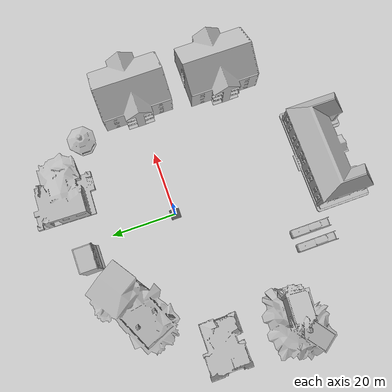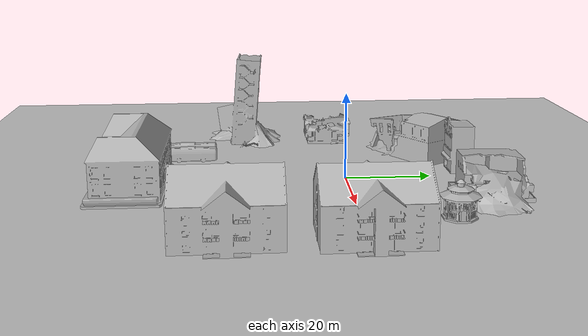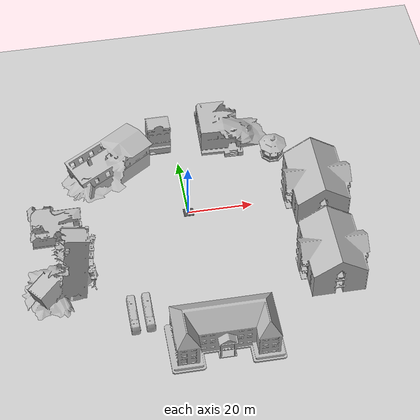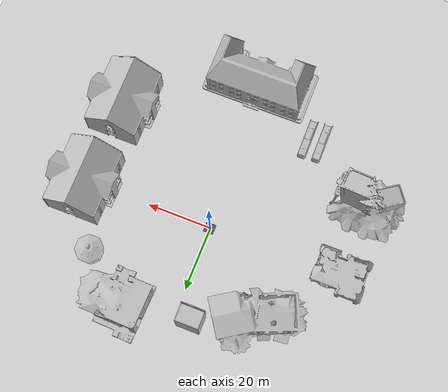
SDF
<sdf version="1.7">
 <world name="default">
  <light name="sun" type="directional">
   <pose>0 0 10 0 -0 0</pose>
   <diffuse>0.8 0.8 0.8 1</diffuse>
   <specular>0.2 0.2 0.2 1</specular>
   <attenuation>
    <range>1000</range>
    <constant>0.9</constant>
    <linear>0.01</linear>
    <quadratic>0.001</quadratic>
   </attenuation>
   <direction>-0.5 0.1 -0.9</direction>
   <spot><inner_angle>0</inner_angle><outer_angle>0</outer_angle><falloff>0</falloff></spot>
  </light>
  <model name="ground_plane">
   <static>1</static>
   <link name="link">
    <collision name="collision">
     <geometry><plane><normal>0 0 1</normal><size>100 100</size></plane></geometry>
     <surface><friction><ode><mu>100</mu><mu2>50</mu2></ode></friction></surface>
    </collision>
    <visual name="visual">
     <cast_shadows>0</cast_shadows>
     <geometry><plane><normal>0 0 1</normal><size>100 100</size></plane></geometry>
     <material>
      <script><uri>file://media/materials/scripts/gazebo.material</uri><name>Gazebo/Grey</name></script>
     </material>
    </visual>
   </link>
  </model>
  <gravity>0 0 -9.8</gravity>
  <magnetic_field>6e-06 2.3e-05 -4.2e-05</magnetic_field>
  <atmosphere type="adiabatic"/>
  <physics type="ode">
   <max_step_size>0.001</max_step_size>
   <real_time_factor>1</real_time_factor>
   <real_time_update_rate>1000</real_time_update_rate>
  </physics>
  <scene><ambient>0.4 0.4 0.4 1</ambient><background>0.7 0.7 0.7 1</background><shadows>1</shadows></scene>
  <spherical_coordinates>
   <surface_model>EARTH_WGS84</surface_model>
   <latitude_deg>0</latitude_deg>
   <longitude_deg>0</longitude_deg>
   <elevation>0</elevation>
   <heading_deg>0</heading_deg>
  </spherical_coordinates>
  <model name="asphalt_plane">
   <static>1</static>
   <link name="link">
    <collision name="collision"><geometry><box><size>3.09866 2.9842 0.1</size></box></geometry></collision>
    <visual name="visual">
     <cast_shadows>0</cast_shadows>
     <geometry><box><size>3.09866 2.9842 0.1</size></box></geometry>
     <material>
      <script>
       <uri>model://asphalt_plane/materials/scripts</uri>
       <uri>model://asphalt_plane/materials/textures</uri>
       <name>vrc/asphalt</name>
      </script>
     </material>
    </visual>
   </link>
   <pose>0.124617 0.064095 0 0 -0 0</pose>
  </model>
  <model name="apartment">
   <static>1</static>
   <link name="link">
    <collision name="collision">
     <geometry><mesh><uri>model://apartment/meshes/apartment.dae</uri></mesh></geometry>
    </collision>
    <visual name="visual">
     <geometry><mesh><uri>model://apartment/meshes/apartment.dae</uri></mesh></geometry>
    </visual>
   </link>
   <pose>40.0406 0.602142 0 0 -0 0</pose>
  </model>
  <model name="apartment_0">
   <static>1</static>
   <link name="link">
    <collision name="collision">
     <geometry><mesh><uri>model://apartment/meshes/apartment.dae</uri></mesh></geometry>
    </collision>
    <visual name="visual">
     <geometry><mesh><uri>model://apartment/meshes/apartment.dae</uri></mesh></geometry>
    </visual>
   </link>
   <pose>38.8113 -26.9007 0 0 -0 0</pose>
  </model>
  <model name="collapsed_police_station">
   <static>1</static>
   <link name="link">
    <collision name="collision">
     <geometry>
      <mesh><uri>model://collapsed_police_station/meshes/collapsed_police_station.dae</uri></mesh>
     </geometry>
    </collision>
    <visual name="visual">
     <geometry>
      <mesh><uri>model://collapsed_police_station/meshes/collapsed_police_station.dae</uri></mesh>
     </geometry>
    </visual>
   </link>
   <pose>19.3867 30.2782 0 0 -0 1.53882</pose>
  </model>
  <model name="thrift_shop">
   <static>1</static>
   <link name="link">
    <collision name="collision">
     <pose>0 0 5.69469 0 -0 0</pose>
     <geometry><box><size>7.21297 5.43165 11.3894</size></box></geometry>
    </collision>
    <visual name="visual">
     <pose>0 -0.912491 0 0 -0 0</pose>
     <geometry><mesh><uri>model://thrift_shop/meshes/thrift_shop.dae</uri></mesh></geometry>
    </visual>
   </link>
   <pose>-5.05308 28.0931 0 0 -0 0</pose>
  </model>
  <model name="school">
   <static>1</static>
   <link name="link">
    <collision name="collision">
     <geometry><mesh><uri>model://school/meshes/school.dae</uri></mesh></geometry>
    </collision>
    <visual name="visual"><geometry><mesh><uri>model://school/meshes/school.dae</uri></mesh></geometry></visual>
   </link>
   <pose>2.49257 -46.7298 0 0 -0 0</pose>
  </model>
  <model name="gazebo">
   <static>1</static>
   <link name="link">
    <collision name="collision">
     <geometry><mesh><scale>3 3 2.5</scale><uri>model://gazebo/meshes/gazebo.dae</uri></mesh></geometry>
    </collision>
    <visual name="visual">
     <geometry><mesh><scale>3 3 2.5</scale><uri>model://gazebo/meshes/gazebo.dae</uri></mesh></geometry>
    </visual>
   </link>
   <pose>30.3348 19.6347 0 0 -0 0</pose>
  </model>
  <model name="bus">
   <static>1</static>
   <link name="link">
    <collision name="collision">
     <geometry><mesh><scale>0.01 0.01 0.01</scale><uri>model://bus/meshes/bus.obj</uri></mesh></geometry>
    </collision>
    <visual name="visual">
     <geometry><mesh><scale>0.01 0.01 0.01</scale><uri>model://bus/meshes/bus.obj</uri></mesh></geometry>
    </visual>
   </link>
   <pose>-17.7643 -36.6267 0 0 -0 0</pose>
  </model>
  <model name="bus_0">
   <static>1</static>
   <link name="link">
    <collision name="collision">
     <geometry><mesh><scale>0.01 0.01 0.01</scale><uri>model://bus/meshes/bus.obj</uri></mesh></geometry>
    </collision>
    <visual name="visual">
     <geometry><mesh><scale>0.01 0.01 0.01</scale><uri>model://bus/meshes/bus.obj</uri></mesh></geometry>
    </visual>
   </link>
   <pose>-22.246 -36.8865 0 0 -0 0</pose>
  </model>
  <model name="collapsed_fire_station">
   <static>1</static>
   <link name="link">
    <collision name="collision">
     <geometry><mesh><uri>model://collapsed_fire_station/meshes/collapsed_fire_station.dae</uri></mesh></geometry>
    </collision>
    <visual name="visual">
     <geometry><mesh><uri>model://collapsed_fire_station/meshes/collapsed_fire_station.dae</uri></mesh></geometry>
    </visual>
   </link>
   <pose>-23.5637 19.7656 0 0 0 -2.55571</pose>
  </model>
  <model name="collapsed_house">
   <static>1</static>
   <link name="link">
    <collision name="collision">
     <geometry>
      <mesh><scale>1.5 1.5 1.5</scale><uri>model://collapsed_house/meshes/collapsed_house.dae</uri></mesh>
     </geometry>
    </collision>
    <visual name="visual">
     <geometry>
      <mesh><scale>1.5 1.5 1.5</scale><uri>model://collapsed_house/meshes/collapsed_house.dae</uri></mesh>
     </geometry>
    </visual>
   </link>
   <pose>-40.9183 -0.37648 0 0 -0 0</pose>
  </model>
  <model name="collapsed_industrial">
   <static>1</static>
   <link name="link">
    <collision name="collision">
     <geometry><mesh><uri>model://collapsed_industrial/meshes/collapsed_industrial.dae</uri></mesh></geometry>
    </collision>
    <visual name="visual">
     <geometry><mesh><uri>model://collapsed_industrial/meshes/collapsed_industrial.dae</uri></mesh></geometry>
    </visual>
   </link>
   <pose>-41.0346 -22.5142 0 0 -0 3.06889</pose>
  </model>
 </world>
</sdf>
